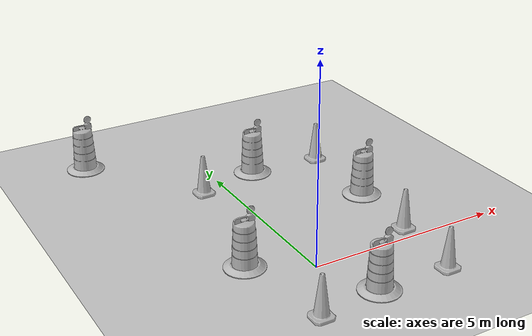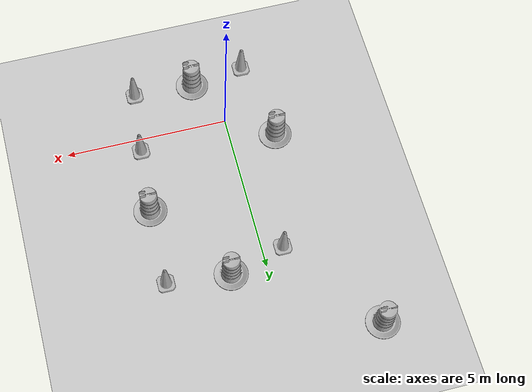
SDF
<sdf version="1.7">
 <world name="default">
  <light name="sun" type="directional">
   <pose>0 0 10 0 -0 0</pose>
   <diffuse>0.8 0.8 0.8 1</diffuse>
   <specular>0.2 0.2 0.2 1</specular>
   <attenuation>
    <range>1000</range>
    <constant>0.9</constant>
    <linear>0.01</linear>
    <quadratic>0.001</quadratic>
   </attenuation>
   <direction>-0.5 0.1 -0.9</direction>
   <spot><inner_angle>0</inner_angle><outer_angle>0</outer_angle><falloff>0</falloff></spot>
  </light>
  <model name="ground_plane">
   <static>1</static>
   <link name="link">
    <collision name="collision">
     <geometry><plane><normal>0 0 1</normal><size>100 100</size></plane></geometry>
     <surface>
      <contact><collide_bitmask>65535</collide_bitmask></contact>
      <friction><ode><mu>100</mu><mu2>50</mu2></ode></friction>
     </surface>
    </collision>
    <visual name="visual">
     <cast_shadows>0</cast_shadows>
     <geometry><plane><normal>0 0 1</normal><size>100 100</size></plane></geometry>
     <material>
      <script><uri>file://media/materials/scripts/gazebo.material</uri><name>Gazebo/Grey</name></script>
     </material>
    </visual>
   </link>
  </model>
  <gravity>0 0 -9.8</gravity>
  <magnetic_field>6e-06 2.3e-05 -4.2e-05</magnetic_field>
  <atmosphere type="adiabatic"/>
  <physics type="ode">
   <max_step_size>0.001</max_step_size>
   <real_time_factor>1</real_time_factor>
   <real_time_update_rate>1000</real_time_update_rate>
  </physics>
  <scene><ambient>0.4 0.4 0.4 1</ambient><background>0.7 0.7 0.7 1</background><shadows>1</shadows></scene>
  <audio><device>default</device></audio>
  <spherical_coordinates>
   <surface_model>EARTH_WGS84</surface_model>
   <latitude_deg>0</latitude_deg>
   <longitude_deg>0</longitude_deg>
   <elevation>0</elevation>
   <heading_deg>0</heading_deg>
  </spherical_coordinates>
  <model name="Construction Cone">
   <link name="link">
    <collision name="collision">
     <geometry>
      <mesh><scale>10 10 10</scale><uri>model://construction_cone/meshes/construction_cone.dae</uri></mesh>
     </geometry>
    </collision>
    <visual name="visual">
     <geometry>
      <mesh><scale>10 10 10</scale><uri>model://construction_cone/meshes/construction_cone.dae</uri></mesh>
     </geometry>
    </visual>
    <inertial>
     <inertia><ixx>1</ixx><ixy>0</ixy><ixz>0</ixz><iyy>1</iyy><iyz>0</iyz><izz>1</izz></inertia>
     <mass>1</mass>
    </inertial>
   </link>
   <pose>2.55237 -1.55684 -0 0 -0 0</pose>
  </model>
  <model name="Construction Cone_0">
   <link name="link">
    <collision name="collision">
     <geometry>
      <mesh><scale>10 10 10</scale><uri>model://construction_cone/meshes/construction_cone.dae</uri></mesh>
     </geometry>
    </collision>
    <visual name="visual">
     <geometry>
      <mesh><scale>10 10 10</scale><uri>model://construction_cone/meshes/construction_cone.dae</uri></mesh>
     </geometry>
    </visual>
    <inertial>
     <inertia><ixx>1</ixx><ixy>0</ixy><ixz>0</ixz><iyy>1</iyy><iyz>0</iyz><izz>1</izz></inertia>
     <mass>1</mass>
    </inertial>
   </link>
   <pose>2.99948 4.80887 -0 1e-06 -0 0</pose>
  </model>
  <model name="Construction Barrel">
   <link name="link">
    <inertial>
     <pose>0 0 0.4 0 -0 0</pose>
     <mass>500</mass>
     <inertia><ixx>51.2096</ixx><iyy>51.2096</iyy><izz>25</izz><ixy>0</ixy><ixz>0</ixz><iyz>0</iyz></inertia>
    </inertial>
    <collision name="collision">
     <geometry><mesh><uri>model://construction_barrel/meshes/construction_barrel.dae</uri></mesh></geometry>
    </collision>
    <visual name="visual">
     <geometry><mesh><uri>model://construction_barrel/meshes/construction_barrel.dae</uri></mesh></geometry>
    </visual>
   </link>
   <pose>-2.79423 7.46019 -2e-06 1e-06 8e-06 -1.6e-05</pose>
  </model>
  <model name="Construction Barrel_0">
   <link name="link">
    <inertial>
     <pose>0 0 0.4 0 -0 0</pose>
     <mass>500</mass>
     <inertia><ixx>51.2096</ixx><iyy>51.2096</iyy><izz>25</izz><ixy>0</ixy><ixz>0</ixz><iyz>0</iyz></inertia>
    </inertial>
    <collision name="collision">
     <geometry><mesh><uri>model://construction_barrel/meshes/construction_barrel.dae</uri></mesh></geometry>
    </collision>
    <visual name="visual">
     <geometry><mesh><uri>model://construction_barrel/meshes/construction_barrel.dae</uri></mesh></geometry>
    </visual>
   </link>
   <pose>2.93748 2.4291 -0 2e-06 -1e-06 -1.6e-05</pose>
  </model>
  <model name="Construction Barrel_1">
   <link name="link">
    <inertial>
     <pose>0 0 0.4 0 -0 0</pose>
     <mass>500</mass>
     <inertia><ixx>51.2096</ixx><iyy>51.2096</iyy><izz>25</izz><ixy>0</ixy><ixz>0</ixz><iyz>0</iyz></inertia>
    </inertial>
    <collision name="collision">
     <geometry><mesh><uri>model://construction_barrel/meshes/construction_barrel.dae</uri></mesh></geometry>
    </collision>
    <visual name="visual">
     <geometry><mesh><uri>model://construction_barrel/meshes/construction_barrel.dae</uri></mesh></geometry>
    </visual>
   </link>
   <pose>1.07893 4.97818 -6e-06 0 -1.3e-05 -1.3e-05</pose>
  </model>
  <model name="Construction Barrel_2">
   <link name="link">
    <inertial>
     <pose>0 0 0.4 0 -0 0</pose>
     <mass>500</mass>
     <inertia><ixx>51.2096</ixx><iyy>51.2096</iyy><izz>25</izz><ixy>0</ixy><ixz>0</ixz><iyz>0</iyz></inertia>
    </inertial>
    <collision name="collision">
     <geometry><mesh><uri>model://construction_barrel/meshes/construction_barrel.dae</uri></mesh></geometry>
    </collision>
    <visual name="visual">
     <geometry><mesh><uri>model://construction_barrel/meshes/construction_barrel.dae</uri></mesh></geometry>
    </visual>
   </link>
   <pose>0.69793 -1.48897 -0 0 -0 -1e-05</pose>
  </model>
  <model name="Construction Cone_1">
   <link name="link">
    <collision name="collision">
     <geometry>
      <mesh><scale>10 10 10</scale><uri>model://construction_cone/meshes/construction_cone.dae</uri></mesh>
     </geometry>
    </collision>
    <visual name="visual">
     <geometry>
      <mesh><scale>10 10 10</scale><uri>model://construction_cone/meshes/construction_cone.dae</uri></mesh>
     </geometry>
    </visual>
    <inertial>
     <inertia><ixx>1</ixx><ixy>0</ixy><ixz>0</ixz><iyy>1</iyy><iyz>0</iyz><izz>1</izz></inertia>
     <mass>1</mass>
    </inertial>
   </link>
   <pose>2.77405 0.40547 0 -0 -0 -0</pose>
  </model>
  <model name="Construction Cone_2">
   <link name="link">
    <collision name="collision">
     <geometry>
      <mesh><scale>10 10 10</scale><uri>model://construction_cone/meshes/construction_cone.dae</uri></mesh>
     </geometry>
    </collision>
    <visual name="visual">
     <geometry>
      <mesh><scale>10 10 10</scale><uri>model://construction_cone/meshes/construction_cone.dae</uri></mesh>
     </geometry>
    </visual>
    <inertial>
     <inertia><ixx>1</ixx><ixy>0</ixy><ixz>0</ixz><iyy>1</iyy><iyz>0</iyz><izz>1</izz></inertia>
     <mass>1</mass>
    </inertial>
   </link>
   <pose>-0.965732 -1.72573 -0 0 -1e-06 -0.008642</pose>
  </model>
  <model name="Construction Cone_3">
   <link name="link">
    <collision name="collision">
     <geometry>
      <mesh><scale>10 10 10</scale><uri>model://construction_cone/meshes/construction_cone.dae</uri></mesh>
     </geometry>
    </collision>
    <visual name="visual">
     <geometry>
      <mesh><scale>10 10 10</scale><uri>model://construction_cone/meshes/construction_cone.dae</uri></mesh>
     </geometry>
    </visual>
    <inertial>
     <inertia><ixx>1</ixx><ixy>0</ixy><ixz>0</ixz><iyy>1</iyy><iyz>0</iyz><izz>1</izz></inertia>
     <mass>1</mass>
    </inertial>
   </link>
   <pose>-0.621738 4.51425 -0 0 -0 0</pose>
  </model>
  <model name="Construction Barrel_3">
   <link name="link">
    <inertial>
     <pose>0 0 0.4 0 -0 0</pose>
     <mass>500</mass>
     <inertia><ixx>51.2096</ixx><iyy>51.2096</iyy><izz>25</izz><ixy>0</ixy><ixz>0</ixz><iyz>0</iyz></inertia>
    </inertial>
    <collision name="collision">
     <geometry><mesh><uri>model://construction_barrel/meshes/construction_barrel.dae</uri></mesh></geometry>
    </collision>
    <visual name="visual">
     <geometry><mesh><uri>model://construction_barrel/meshes/construction_barrel.dae</uri></mesh></geometry>
    </visual>
   </link>
   <pose>-1.40772 0.82531 -0 0 0 -3.5e-05</pose>
  </model>
 </world>
</sdf>
